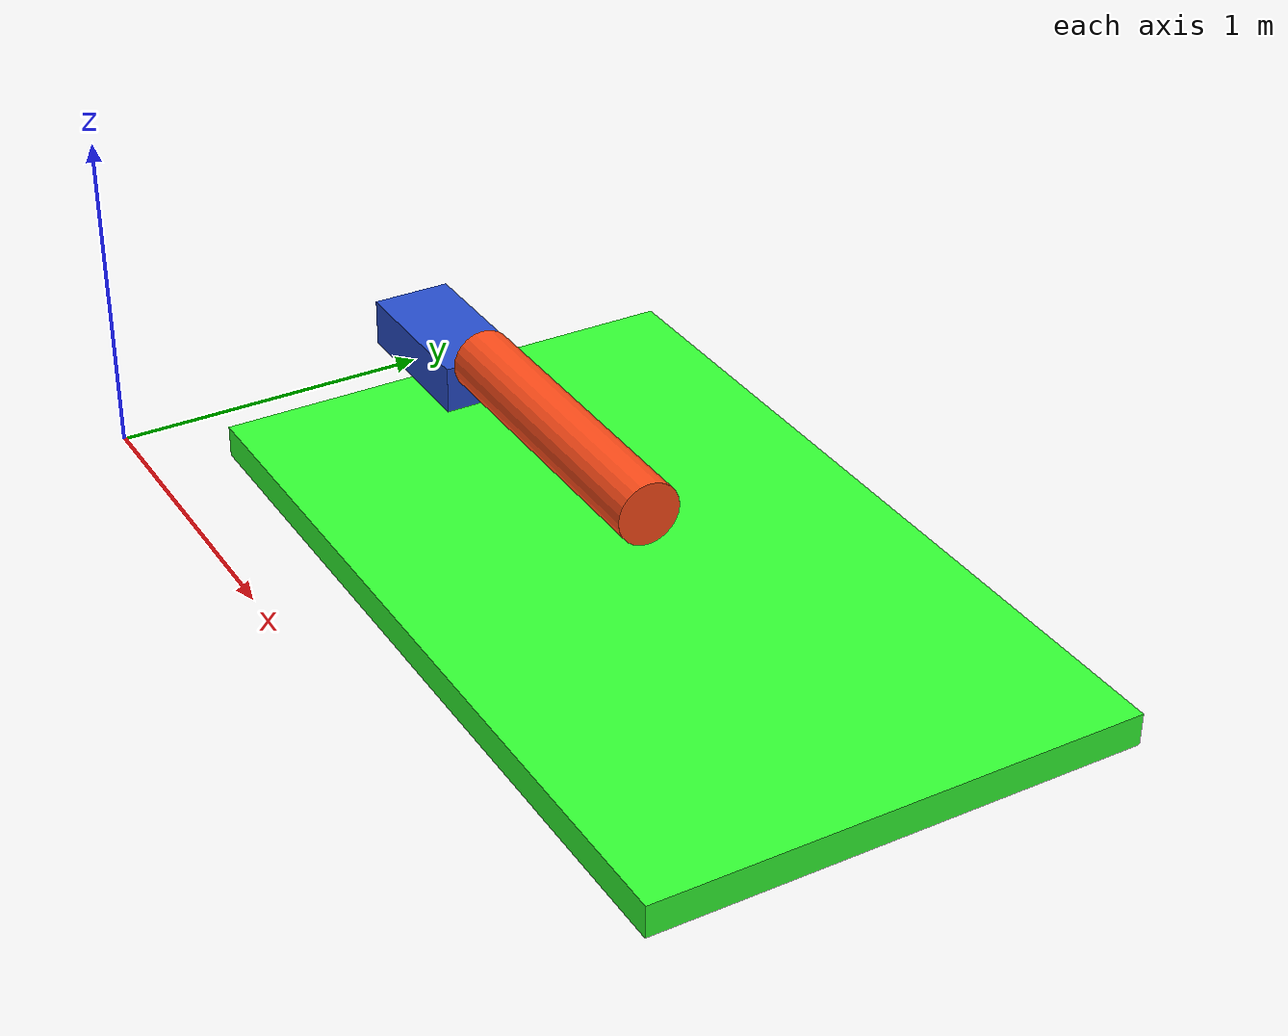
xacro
<?xml version="1.0"?>
<robot xmlns:xacro="http://www.ros.org/wiki/xacro" name="robot">
    <xacro:include filename="utils.xacro" />

    <xacro:property name="arm_length" value="1" />
    <xacro:property name="arm_radius" value="0.1" />
    <xacro:arg name="color" default="blue"/>

    <link name="world"></link>
    <joint name="base_joint" type="fixed">
        <origin xyz="1.5 1.0 0" rpy="0 0 0"/>
        <parent link="world"/>
        <child link="base_link"/>
    </joint>
    <link name="base_link">
        <visual>
            <origin xyz="0 0 0.05" rpy="0 0 0"/>
            <geometry>
                <box size="2.5 1.5 0.1" />
            </geometry>
            <material name="green">
                <color rgba="0.2 1 0.2 1"/>
            </material>
        </visual>
        <collision>
            <origin xyz="0 0 0.05" rpy="0 0 0"/>
            <geometry>
                <box size="2.5 1.5 0.1" />
            </geometry>
        </collision>
        <xacro:inertial_box mass="12" x="2.5" y="1.5" z="0.1">
            <origin xyz="0 0 0.005" rpy="0 0 0"/>
        </xacro:inertial_box>

    </link>
    <joint name="slider_joint" type="prismatic">
        <origin xyz="-1.25 0 0.1" rpy="0 0 0"/>
        <parent link="base_link"/>
        <child link="slider_link"/>
        <axis xyz="1 0 0"/>
        <limit lower="0" upper="2" velocity="100" effort="100"/>
    </joint>
    <link name="slider_link">
        <visual>
            <origin xyz="0 0 0.075" rpy="0 0 0"/>
            <geometry>
                <box size="0.5 0.25 0.15" />
            </geometry>
            <material name="$(arg color)" />
        </visual>
        <collision>
            <origin xyz="0 0 0.075" rpy="0 0 0"/>
            <geometry>
                <box size="0.5 0.25 0.15" />
            </geometry>
        </collision>
        <xacro:inertial_box mass="0.5" x="0.5" y="0.25" z="0.15">
            <origin xyz="0 0 0.075" rpy="0 0 0"/>
        </xacro:inertial_box>
    </link>
    <joint name="arm_joint" type="revolute">
        <origin xyz="0.25 0 0.15" rpy="0 0 0"/>
        <parent link="slider_link"/>
        <child link="arm_link"/>
        <axis xyz="0 -1 0"/>
        <limit lower="0" upper="${pi/2}" velocity="100" effort="100"/>
    </joint>
    <link name="arm_link">
        <visual>
            <origin xyz="${arm_length/2} 0 0" rpy="0 ${pi/2} 0"/>
            <geometry>
                <cylinder length="${arm_length}" radius="${arm_radius}" />
            </geometry>
            <material name="orange" />
        </visual>
        <collision>
            <origin xyz="${arm_length/2} 0 0" rpy="0 ${pi/2} 0"/>
            <geometry>
                <cylinder length="${arm_length}" radius="${arm_radius}" />
            </geometry>
        </collision>
        <xacro:inertial_cylinder mass="1.0" length="${arm_length}" radius="${arm_radius}">
            <origin xyz="${arm_length/2} 0 0" rpy="0 ${pi/2} 0"/>
        </xacro:inertial_cylinder>
    </link>

</robot>

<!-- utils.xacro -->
<robot xmlns:xacro="http://www.ros.org/wiki/xacro">

    <material name="white">
        <color rgba="1 1 1 1"/>
    </material>

    <material name="orange">
        <color rgba="1 0.3 0.1 1"/>
    </material>

    <material name="black">
        <color rgba="0 0 0 1"/>
    </material>

    <xacro:macro name="inertial_sphere" params="mass radius *origin">
        <inertial>
            <xacro:insert_block name="origin"/>
            <mass value="${mass}" />
            <inertia ixx="${(2/5) * mass * (radius*radius)}" ixy="0.0" ixz="0.0" iyy="${(2/5) * mass * (radius*radius)}" iyz="0.0" izz="${(2/5) * mass * (radius*radius)}" />
        </inertial>
    </xacro:macro>

    <xacro:macro name="inertial_box" params="mass x y z *origin">
        <inertial>
            <xacro:insert_block name="origin"/>
            <mass value="${mass}" />
            <inertia ixx="${(1/12) * mass * (y*y+z*z)}" ixy="0.0" ixz="0.0" iyy="${(1/12) * mass * (x*x+z*z)}" iyz="0.0" izz="${(1/12) * mass * (x*x+y*y)}" />
        </inertial>
    </xacro:macro>

    <xacro:macro name="inertial_cylinder" params="mass length radius *origin">
        <inertial>
            <xacro:insert_block name="origin"/>
            <mass value="${mass}" />
            <inertia ixx="${(1/12) * mass * (3*radius*radius + length*length)}" ixy="0.0" ixz="0.0" iyy="${(1/12) * mass * (3*radius*radius + length*length)}" iyz="0.0" izz="${(1/2) * mass * (radius*radius)}" />
        </inertial>
    </xacro:macro>

</robot>
